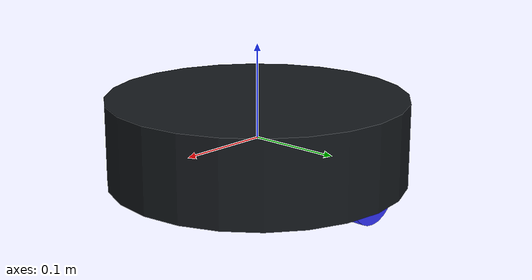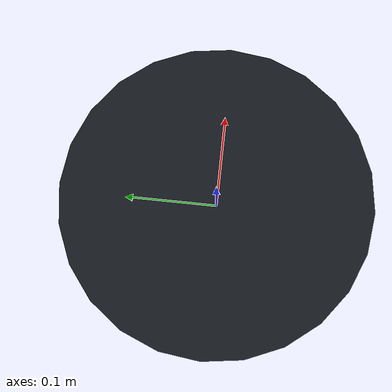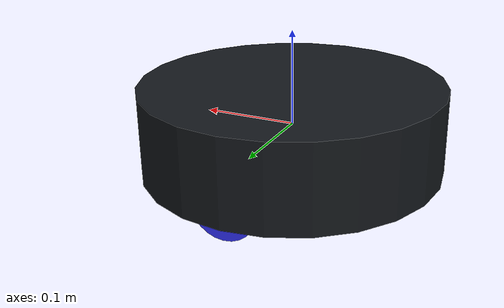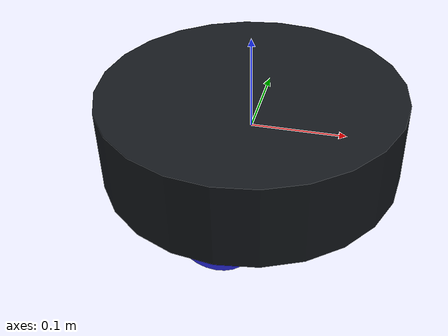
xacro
<?xml version="1.0"?>
<robot xmlns:xacro="http://www.ros.org/wiki/xacro">

    <xacro:include filename="inertial_macros.xacro" />

    <material name="white">
        <color rgba="1 1 1 1"/>
    </material>

    <material name="blue">
        <color rgba="0.2 0.2 1 1"/>
    </material>

    <material name="black">
        <color rgba="0.082 0.098 0.114 1"/>
    </material>

    <link name="base_link">
    </link>

    <!-- BASE_FOOTPRINT -->

    <joint name="base_footprint_joint" type="fixed">
        <parent link="base_link"/>
        <child link="base_footprint"/>
    </joint>

    <link name="base_footprint">
    </link>

    <!-- CHASSIS -->

    <joint name="chassis_joint" type="fixed">
        <parent link="base_link"/>
        <child link="chassis"/>
    </joint>

    <link name="chassis">
        <visual>
            <geometry>
                <cylinder length="0.09" radius="0.16" />
            </geometry>
            <material name="black"/>
        </visual>
        <collision>
            <geometry>
                <cylinder length="0.09" radius="0.16" />
            </geometry>
        </collision>
        <xacro:inertial_cylinder mass="2.5" length="0.09" radius="0.16">
            <origin xyz="0 0 0" rpy="0 0 0"/>
        </xacro:inertial_cylinder>
    </link>

    <!-- LEFT WHEEL -->

    <joint name="left_wheel_joint" type="continuous">
        <parent link="base_link"/>
        <child link="left_wheel"/>
        <origin xyz="0 0.14 -0.025" rpy="-${pi/2} 0 0"/>
        <axis xyz="0 0 1"/>
        <limit effort="1.471" velocity="11.519"/>
    </joint>

    <link name="left_wheel">
        <visual>
            <geometry>
                <cylinder length="0.027" radius="0.0335" />
            </geometry>
            <material name="blue"/>
        </visual>
        <collision>
            <geometry>
                <cylinder length="0.027" radius="0.0335" />
            </geometry>
        </collision>
        <xacro:inertial_cylinder mass="0.055" length="0.027" radius="0.0335">
            <origin xyz="0 0 0" rpy="0 0 0"/>
        </xacro:inertial_cylinder>
    </link>

    <!-- RIGHT WHEEL -->

    <joint name="right_wheel_joint" type="continuous">
        <parent link="base_link"/>
        <child link="right_wheel"/>
        <origin xyz="0 -0.14 -0.025" rpy="${pi/2} 0 0"/>
        <axis xyz="0 0 -1"/>
        <limit effort="1.471" velocity="11.519"/>
    </joint>

    <link name="right_wheel">
        <visual>
            <geometry>
                <cylinder length="0.027" radius="0.0335" />
            </geometry>
            <material name="blue"/>
        </visual>
        <collision>
            <geometry>
                <cylinder length="0.027" radius="0.0335" />
            </geometry>
        </collision>
        <xacro:inertial_cylinder mass="0.055" length="0.027" radius="0.0335">
            <origin xyz="0 0 0" rpy="0 0 0"/>
        </xacro:inertial_cylinder>
    </link>

    <!-- FRONT CASTER -->

    <joint name="front_caster_joint" type="fixed">
        <parent link="chassis"/>
        <child link="front_caster"/>
        <origin xyz="0.11 0 -0.05006" rpy="0 0 0"/>
    </joint>

    <link name="front_caster">
        <visual>
            <geometry>
                <sphere radius="0.00794" />
            </geometry>
            <material name="white"/>
        </visual>
        <collision>
            <geometry>
                <sphere radius="0.00794" />
            </geometry>
        </collision>
        <xacro:inertial_sphere mass="0.04" radius="0.00794">
            <origin xyz="0 0 0" rpy="0 0 0"/>
        </xacro:inertial_sphere>
    </link>

    <gazebo reference="front_caster">
        <mu1 value="0.01"/>
        <mu2 value="0.01"/>
    </gazebo>

    <!-- REAR CASTER -->

    <joint name="rear_caster_joint" type="fixed">
        <parent link="chassis"/>
        <child link="rear_caster"/>
        <origin xyz="-0.11 0 -0.05006" rpy="0 0 0"/>
    </joint>

    <link name="rear_caster">
        <visual>
            <geometry>
                <sphere radius="0.00794" />
            </geometry>
            <material name="white"/>
        </visual>
        <collision>
            <geometry>
                <sphere radius="0.00794" />
            </geometry>
        </collision>
        <xacro:inertial_sphere mass="0.04" radius="0.00794">
            <origin xyz="0 0 0" rpy="0 0 0"/>
        </xacro:inertial_sphere>
    </link>

    <gazebo reference="rear_caster">
        <mu1 value="0.01"/>
        <mu2 value="0.01"/>
    </gazebo>

</robot>
